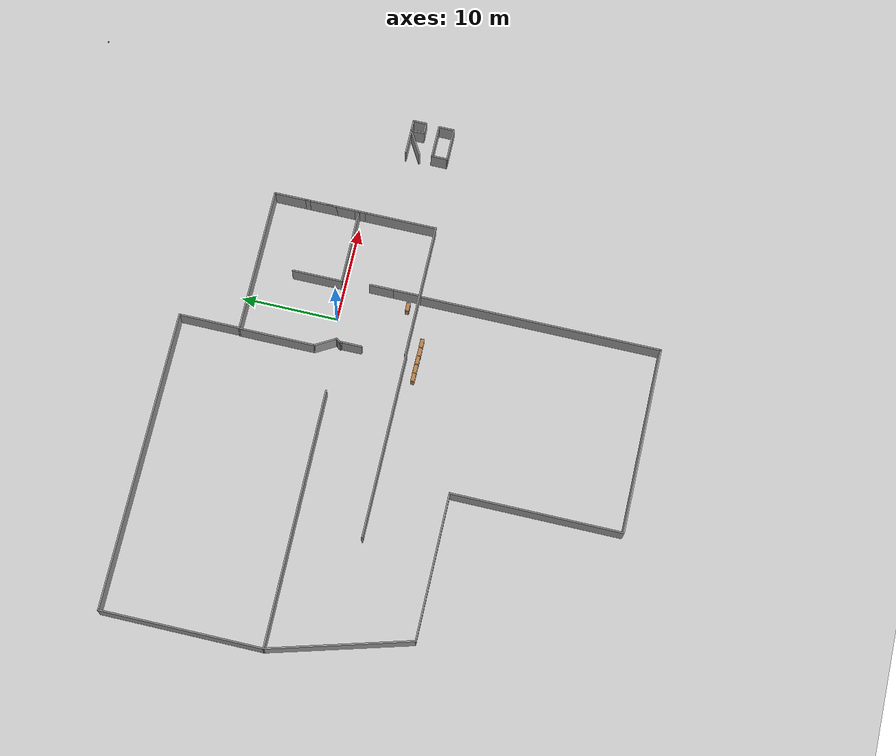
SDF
<sdf version="1.6">
 <world name="default">
  <light name="sun" type="directional">
   <pose>0 0 10 0 -0 0</pose>
   <diffuse>0.8 0.8 0.8 1</diffuse>
   <specular>0.1 0.1 0.1 1</specular>
   <attenuation>
    <range>1000</range>
    <constant>0.9</constant>
    <linear>0.01</linear>
    <quadratic>0.001</quadratic>
   </attenuation>
   <direction>-0.5 0.5 -1</direction>
  </light>
  <model name="ground_plane">
   <static>1</static>
   <link name="link">
    <collision name="collision">
     <geometry><plane><normal>0 0 1</normal><size>100 100</size></plane></geometry>
     <surface><friction><ode><mu>100</mu><mu2>50</mu2></ode></friction></surface>
    </collision>
    <visual name="visual">
     <cast_shadows>0</cast_shadows>
     <geometry><plane><normal>0 0 1</normal><size>100 100</size></plane></geometry>
     <material>
      <script><uri>file://media/materials/scripts/gazebo.material</uri><name>Gazebo/Grey</name></script>
     </material>
    </visual>
   </link>
  </model>
  <physics name="default_physics" default="0" type="ode">
   <max_step_size>0.01</max_step_size>
   <real_time_factor>1</real_time_factor>
   <real_time_update_rate>100</real_time_update_rate>
  </physics>
  <gravity>0 0 -9.8</gravity>
  <magnetic_field>6e-06 2.3e-05 -4.2e-05</magnetic_field>
  <atmosphere type="adiabatic"/>
  <scene><ambient>0.4 0.4 0.4 1</ambient><background>0.7 0.7 0.7 1</background><shadows>1</shadows></scene>
  <spherical_coordinates>
   <surface_model>EARTH_WGS84</surface_model>
   <latitude_deg>0</latitude_deg>
   <longitude_deg>0</longitude_deg>
   <elevation>0</elevation>
   <heading_deg>0</heading_deg>
  </spherical_coordinates>
  <model name="Untitled">
   <pose>-2.94 -2.075 0 0 -0 0</pose>
   <link name="Wall_0">
    <collision name="Wall_0_Collision">
     <geometry><box><size>2.5 0.15 2.5</size></box></geometry>
     <pose>0 0 1.25 0 -0 0</pose>
    </collision>
    <visual name="Wall_0_Visual">
     <pose>0 0 1.25 0 -0 0</pose>
     <geometry><box><size>2.5 0.15 2.5</size></box></geometry>
     <material>
      <script><uri>file://media/materials/scripts/gazebo.material</uri><name>Gazebo/Grey</name></script>
      <ambient>1 1 1 1</ambient>
     </material>
    </visual>
    <pose>0 0 0 0 0 -1.5708</pose>
   </link>
   <static>1</static>
  </model>
  <model name="Untitled_0">
   <pose>3.65018 0.74622 0 0 -0 0</pose>
   <link name="Wall_1">
    <collision name="Wall_1_Collision">
     <geometry><box><size>14 0.15 2.5</size></box></geometry>
     <pose>0 0 1.25 0 -0 0</pose>
    </collision>
    <visual name="Wall_1_Visual">
     <pose>0 0 1.25 0 -0 0</pose>
     <geometry><box><size>14 0.15 2.5</size></box></geometry>
     <material>
      <script><uri>file://media/materials/scripts/gazebo.material</uri><name>Gazebo/Grey</name></script>
      <ambient>1 1 1 1</ambient>
     </material>
    </visual>
    <pose>0.638726 -8.525 0 0 -0 0</pose>
   </link>
   <link name="Wall_10">
    <collision name="Wall_10_Collision">
     <geometry><box><size>0.75 0.15 2.5</size></box></geometry>
     <pose>0 0 1.25 0 -0 0</pose>
    </collision>
    <visual name="Wall_10_Visual">
     <pose>0 0 1.25 0 -0 0</pose>
     <geometry><box><size>0.75 0.15 2.5</size></box></geometry>
     <material>
      <script><uri>file://media/materials/scripts/gazebo.material</uri><name>Gazebo/Grey</name></script>
      <ambient>1 1 1 1</ambient>
     </material>
    </visual>
    <pose>-6.51128 -1.61997 0 0 0 -2.0944</pose>
   </link>
   <link name="Wall_12">
    <collision name="Wall_12_Collision">
     <geometry><box><size>2.75 0.15 2.5</size></box></geometry>
     <pose>0 0 1.25 0 -0 0</pose>
    </collision>
    <visual name="Wall_12_Visual">
     <pose>0 0 1.25 0 -0 0</pose>
     <geometry><box><size>2.75 0.15 2.5</size></box></geometry>
     <material>
      <script><uri>file://media/materials/scripts/gazebo.material</uri><name>Gazebo/Grey</name></script>
      <ambient>1 1 1 1</ambient>
     </material>
    </visual>
    <pose>0.042148 -7.03161 0 0 0 -1.5708</pose>
   </link>
   <link name="Wall_14">
    <collision name="Wall_14_Collision">
     <geometry><box><size>5.25 0.15 2.5</size></box></geometry>
     <pose>0 0 1.25 0 -0 0</pose>
    </collision>
    <visual name="Wall_14_Visual">
     <pose>0 0 1.25 0 -0 0</pose>
     <geometry><box><size>5.25 0.15 2.5</size></box></geometry>
     <material>
      <script><uri>file://media/materials/scripts/gazebo.material</uri><name>Gazebo/Grey</name></script>
      <ambient>1 1 1 1</ambient>
     </material>
    </visual>
    <pose>-0.251054 2.13149 0 0 0 -1.5708</pose>
   </link>
   <link name="Wall_15">
    <collision name="Wall_15_Collision">
     <geometry><box><size>7.75 0.15 2.5</size></box></geometry>
     <pose>0 0 1.25 0 -0 0</pose>
    </collision>
    <visual name="Wall_15_Visual">
     <pose>0 0 1.25 0 -0 0</pose>
     <geometry><box><size>7.75 0.15 2.5</size></box></geometry>
     <material>
      <script><uri>file://media/materials/scripts/gazebo.material</uri><name>Gazebo/Grey</name></script>
      <ambient>1 1 1 1</ambient>
     </material>
    </visual>
    <pose>3.54895 -0.418508 0 0 -0 0</pose>
   </link>
   <link name="Wall_19">
    <collision name="Wall_19_Collision">
     <geometry><box><size>2.5 0.15 2.5</size></box></geometry>
     <pose>0 0 1.25 0 -0 0</pose>
    </collision>
    <visual name="Wall_19_Visual">
     <pose>0 0 1.25 0 -0 0</pose>
     <geometry><box><size>2.5 0.15 2.5</size></box></geometry>
     <material>
      <script><uri>file://media/materials/scripts/gazebo.material</uri><name>Gazebo/Grey</name></script>
      <ambient>1 1 1 1</ambient>
     </material>
    </visual>
    <pose>0.042148 -4.55661 0 0 -0 1.5708</pose>
   </link>
   <link name="Wall_2">
    <collision name="Wall_2_Collision">
     <geometry><box><size>7.5 0.15 2.5</size></box></geometry>
     <pose>0 0 1.25 0 -0 0</pose>
    </collision>
    <visual name="Wall_2_Visual">
     <pose>0 0 1.25 0 -0 0</pose>
     <geometry><box><size>7.5 0.15 2.5</size></box></geometry>
     <material>
      <script><uri>file://media/materials/scripts/gazebo.material</uri><name>Gazebo/Grey</name></script>
      <ambient>1 1 1 1</ambient>
     </material>
    </visual>
    <pose>7.56373 -4.85 0 0 -0 1.5708</pose>
   </link>
   <link name="Wall_3">
    <collision name="Wall_3_Collision">
     <geometry><box><size>6 0.15 2.5</size></box></geometry>
     <pose>0 0 1.25 0 -0 0</pose>
    </collision>
    <visual name="Wall_3_Visual">
     <pose>0 0 1.25 0 -0 0</pose>
     <geometry><box><size>6 0.15 2.5</size></box></geometry>
     <material>
      <script><uri>file://media/materials/scripts/gazebo.material</uri><name>Gazebo/Grey</name></script>
      <ambient>1 1 1 1</ambient>
     </material>
    </visual>
    <pose>7.56373 1.75 0 0 -0 1.5708</pose>
   </link>
   <link name="Wall_4">
    <collision name="Wall_4_Collision">
     <geometry><box><size>4.75 0.15 2.5</size></box></geometry>
     <pose>0 0 1.25 0 -0 0</pose>
    </collision>
    <visual name="Wall_4_Visual">
     <pose>0 0 1.25 0 -0 0</pose>
     <geometry><box><size>4.75 0.15 2.5</size></box></geometry>
     <material>
      <script><uri>file://media/materials/scripts/gazebo.material</uri><name>Gazebo/Grey</name></script>
      <ambient>1 1 1 1</ambient>
     </material>
    </visual>
    <pose>7.56373 2.375 0 0 0 -1.5708</pose>
   </link>
   <link name="Wall_5">
    <collision name="Wall_5_Collision">
     <geometry><box><size>5.25 0.15 2.5</size></box></geometry>
     <pose>0 0 1.25 0 -0 0</pose>
    </collision>
    <visual name="Wall_5_Visual">
     <pose>0 0 1.25 0 -0 0</pose>
     <geometry><box><size>5.25 0.15 2.5</size></box></geometry>
     <material>
      <script><uri>file://media/materials/scripts/gazebo.material</uri><name>Gazebo/Grey</name></script>
      <ambient>1 1 1 1</ambient>
     </material>
    </visual>
    <pose>7.56373 2.625 0 0 -0 1.5708</pose>
   </link>
   <link name="Wall_6">
    <collision name="Wall_6_Collision">
     <geometry><box><size>3.5 0.15 2.5</size></box></geometry>
     <pose>0 0 1.25 0 -0 0</pose>
    </collision>
    <visual name="Wall_6_Visual">
     <pose>0 0 1.25 0 -0 0</pose>
     <geometry><box><size>3.5 0.15 2.5</size></box></geometry>
     <material>
      <script><uri>file://media/materials/scripts/gazebo.material</uri><name>Gazebo/Grey</name></script>
      <ambient>1 1 1 1</ambient>
     </material>
    </visual>
    <pose>7.56373 6.85 0 0 -0 1.5708</pose>
   </link>
   <link name="Wall_7">
    <collision name="Wall_7_Collision">
     <geometry><box><size>15.25 0.15 2.5</size></box></geometry>
     <pose>0 0 1.25 0 -0 0</pose>
    </collision>
    <visual name="Wall_7_Visual">
     <pose>0 0 1.25 0 -0 0</pose>
     <geometry><box><size>15.25 0.15 2.5</size></box></geometry>
     <material>
      <script><uri>file://media/materials/scripts/gazebo.material</uri><name>Gazebo/Grey</name></script>
      <ambient>1 1 1 1</ambient>
     </material>
    </visual>
    <pose>0.013725 8.525 0 0 -0 3.14159</pose>
   </link>
   <link name="Wall_8">
    <collision name="Wall_8_Collision">
     <geometry><box><size>8 0.15 2.5</size></box></geometry>
     <pose>0 0 1.25 0 -0 0</pose>
    </collision>
    <visual name="Wall_8_Visual">
     <pose>0 0 1.25 0 -0 0</pose>
     <geometry><box><size>8 0.15 2.5</size></box></geometry>
     <material>
      <script><uri>file://media/materials/scripts/gazebo.material</uri><name>Gazebo/Grey</name></script>
      <ambient>1 1 1 1</ambient>
     </material>
    </visual>
    <pose>-7.53627 4.6 0 0 0 -1.5708</pose>
   </link>
   <link name="Wall_9">
    <collision name="Wall_9_Collision">
     <geometry><box><size>2.5 0.15 2.5</size></box></geometry>
     <pose>0 0 1.25 0 -0 0</pose>
    </collision>
    <visual name="Wall_9_Visual">
     <pose>0 0 1.25 0 -0 0</pose>
     <geometry><box><size>2.5 0.15 2.5</size></box></geometry>
     <material>
      <script><uri>file://media/materials/scripts/gazebo.material</uri><name>Gazebo/Grey</name></script>
      <ambient>1 1 1 1</ambient>
     </material>
    </visual>
    <pose>-6.94878 -0.34258 0 0 0 -1.0472</pose>
   </link>
   <static>1</static>
  </model>
  <model name="Untitled_1">
   <pose>-15.6763 -8.6699 0 0 -0 0</pose>
   <link name="Wall_10">
    <collision name="Wall_10_Collision">
     <geometry><box><size>19.5 0.15 2.5</size></box></geometry>
     <pose>0 0 1.25 0 -0 0</pose>
    </collision>
    <visual name="Wall_10_Visual">
     <pose>0 0 1.25 0 -0 0</pose>
     <geometry><box><size>19.5 0.15 2.5</size></box></geometry>
     <material>
      <script><uri>file://media/materials/scripts/gazebo.material</uri><name>Gazebo/Grey</name></script>
      <ambient>1 1 1 1</ambient>
     </material>
    </visual>
    <pose>9.60067 -24.2128 0 0 -0 0</pose>
   </link>
   <link name="Wall_11">
    <collision name="Wall_11_Collision">
     <geometry><box><size>25 0.15 2.5</size></box></geometry>
     <pose>0 0 1.25 0 -0 0</pose>
    </collision>
    <visual name="Wall_11_Visual">
     <pose>0 0 1.25 0 -0 0</pose>
     <geometry><box><size>25 0.15 2.5</size></box></geometry>
     <material>
      <script><uri>file://media/materials/scripts/gazebo.material</uri><name>Gazebo/Grey</name></script>
      <ambient>1 1 1 1</ambient>
     </material>
    </visual>
    <pose>19.2757 -11.7878 0 0 -0 1.5708</pose>
   </link>
   <link name="Wall_13">
    <collision name="Wall_13_Collision">
     <geometry><box><size>16.6564 0.15 2.5</size></box></geometry>
     <pose>0 0 1.25 0 -0 0</pose>
    </collision>
    <visual name="Wall_13_Visual">
     <pose>0 0 1.25 0 -0 0</pose>
     <geometry><box><size>16.6564 0.15 2.5</size></box></geometry>
     <material>
      <script><uri>file://media/materials/scripts/gazebo.material</uri><name>Gazebo/Grey</name></script>
      <ambient>1 1 1 1</ambient>
     </material>
    </visual>
    <pose>-19.2579 15.9596 0 0 -0 1.5708</pose>
   </link>
   <link name="Wall_16">
    <collision name="Wall_16_Collision">
     <geometry><box><size>31.25 0.15 2.5</size></box></geometry>
     <pose>0 0 1.25 0 -0 0</pose>
    </collision>
    <visual name="Wall_16_Visual">
     <pose>0 0 1.25 0 -0 0</pose>
     <geometry><box><size>31.25 0.15 2.5</size></box></geometry>
     <material>
      <script><uri>file://media/materials/scripts/gazebo.material</uri><name>Gazebo/Grey</name></script>
      <ambient>1 1 1 1</ambient>
     </material>
    </visual>
    <pose>-3.70789 24.2128 0 0 -0 0</pose>
   </link>
   <link name="Wall_17">
    <collision name="Wall_17_Collision">
     <geometry><box><size>6.75 0.15 2.5</size></box></geometry>
     <pose>0 0 1.25 0 -0 0</pose>
    </collision>
    <visual name="Wall_17_Visual">
     <pose>0 0 1.25 0 -0 0</pose>
     <geometry><box><size>6.75 0.15 2.5</size></box></geometry>
     <material>
      <script><uri>file://media/materials/scripts/gazebo.material</uri><name>Gazebo/Grey</name></script>
      <ambient>1 1 1 1</ambient>
     </material>
    </visual>
    <pose>11.8421 20.9128 0 0 0 -1.5708</pose>
   </link>
   <link name="Wall_3">
    <collision name="Wall_3_Collision">
     <geometry><box><size>19.5 0.15 2.5</size></box></geometry>
     <pose>0 0 1.25 0 -0 0</pose>
    </collision>
    <visual name="Wall_3_Visual">
     <pose>0 0 1.25 0 -0 0</pose>
     <geometry><box><size>19.5 0.15 2.5</size></box></geometry>
     <material>
      <script><uri>file://media/materials/scripts/gazebo.material</uri><name>Gazebo/Grey</name></script>
      <ambient>1 1 1 1</ambient>
     </material>
    </visual>
    <pose>3.335 0.803938 0 0 -0 0</pose>
   </link>
   <link name="Wall_6">
    <collision name="Wall_6_Collision">
     <geometry><box><size>26.8214 0.15 2.5</size></box></geometry>
     <pose>0 0 1.25 0 -0 0</pose>
    </collision>
    <visual name="Wall_6_Visual">
     <pose>0 0 1.25 0 -0 0</pose>
     <geometry><box><size>26.8214 0.15 2.5</size></box></geometry>
     <material>
      <script><uri>file://media/materials/scripts/gazebo.material</uri><name>Gazebo/Grey</name></script>
      <ambient>1 1 1 1</ambient>
     </material>
    </visual>
    <pose>-5.92229 7.70568 0 0 0 -3.13463</pose>
   </link>
   <link name="Wall_7">
    <collision name="Wall_7_Collision">
     <geometry><box><size>14.9501 0.15 2.5</size></box></geometry>
     <pose>0 0 1.25 0 -0 0</pose>
    </collision>
    <visual name="Wall_7_Visual">
     <pose>0 0 1.25 0 -0 0</pose>
     <geometry><box><size>14.9501 0.15 2.5</size></box></geometry>
     <material>
      <script><uri>file://media/materials/scripts/gazebo.material</uri><name>Gazebo/Grey</name></script>
      <ambient>1 1 1 1</ambient>
     </material>
    </visual>
    <pose>-17.2161 0.500001 0 0 0 -1.29126</pose>
   </link>
   <link name="Wall_8">
    <collision name="Wall_8_Collision">
     <geometry><box><size>15.25 0.15 2.5</size></box></geometry>
     <pose>0 0 1.25 0 -0 0</pose>
    </collision>
    <visual name="Wall_8_Visual">
     <pose>0 0 1.25 0 -0 0</pose>
     <geometry><box><size>15.25 0.15 2.5</size></box></geometry>
     <material>
      <script><uri>file://media/materials/scripts/gazebo.material</uri><name>Gazebo/Grey</name></script>
      <ambient>1 1 1 1</ambient>
     </material>
    </visual>
    <pose>-7.62433 -6.6128 0 0 -0 0</pose>
   </link>
   <link name="Wall_9">
    <collision name="Wall_9_Collision">
     <geometry><box><size>17.75 0.15 2.5</size></box></geometry>
     <pose>0 0 1.25 0 -0 0</pose>
    </collision>
    <visual name="Wall_9_Visual">
     <pose>0 0 1.25 0 -0 0</pose>
     <geometry><box><size>17.75 0.15 2.5</size></box></geometry>
     <material>
      <script><uri>file://media/materials/scripts/gazebo.material</uri><name>Gazebo/Grey</name></script>
      <ambient>1 1 1 1</ambient>
     </material>
    </visual>
    <pose>-0.074333 -15.4128 0 0 0 -1.5708</pose>
   </link>
   <static>1</static>
  </model>
  <model name="bookshelf_0">
   <static>1</static>
   <link name="link">
    <inertial><mass>1</mass></inertial>
    <collision name="back">
     <pose>0 0.005 0.6 0 -0 0</pose>
     <geometry><box><size>0.9 0.01 1.2</size></box></geometry>
    </collision>
    <visual name="visual1">
     <pose>0 0.005 0.6 0 -0 0</pose>
     <geometry><box><size>0.9 0.01 1.2</size></box></geometry>
     <material>
      <script><uri>file://media/materials/scripts/gazebo.material</uri><name>Gazebo/Wood</name></script>
     </material>
    </visual>
    <collision name="left_side">
     <pose>0.45 -0.195 0.6 0 -0 0</pose>
     <geometry><box><size>0.02 0.4 1.2</size></box></geometry>
    </collision>
    <visual name="visual2">
     <pose>0.45 -0.195 0.6 0 -0 0</pose>
     <geometry><box><size>0.02 0.4 1.2</size></box></geometry>
     <material>
      <script><uri>file://media/materials/scripts/gazebo.material</uri><name>Gazebo/Wood</name></script>
     </material>
    </visual>
    <collision name="right_side">
     <pose>-0.45 -0.195 0.6 0 -0 0</pose>
     <geometry><box><size>0.02 0.4 1.2</size></box></geometry>
    </collision>
    <visual name="visual3">
     <pose>-0.45 -0.195 0.6 0 -0 0</pose>
     <geometry><box><size>0.02 0.4 1.2</size></box></geometry>
     <material>
      <script><uri>file://media/materials/scripts/gazebo.material</uri><name>Gazebo/Wood</name></script>
     </material>
    </visual>
    <collision name="bottom">
     <pose>0 -0.195 0.03 0 -0 0</pose>
     <geometry><box><size>0.88 0.4 0.06</size></box></geometry>
    </collision>
    <visual name="visual4">
     <pose>0 -0.195 0.03 0 -0 0</pose>
     <geometry><box><size>0.88 0.4 0.06</size></box></geometry>
     <material>
      <script><uri>file://media/materials/scripts/gazebo.material</uri><name>Gazebo/Wood</name></script>
     </material>
    </visual>
    <collision name="top">
     <pose>0 -0.195 1.19 0 -0 0</pose>
     <geometry><box><size>0.88 0.4 0.02</size></box></geometry>
    </collision>
    <visual name="visual5">
     <pose>0 -0.195 1.19 0 -0 0</pose>
     <geometry><box><size>0.88 0.4 0.02</size></box></geometry>
     <material>
      <script><uri>file://media/materials/scripts/gazebo.material</uri><name>Gazebo/Wood</name></script>
     </material>
    </visual>
    <collision name="low_shelf">
     <pose>0 -0.195 0.43 0 -0 0</pose>
     <geometry><box><size>0.88 0.4 0.02</size></box></geometry>
    </collision>
    <visual name="visual6">
     <pose>0 -0.195 0.43 0 -0 0</pose>
     <geometry><box><size>0.88 0.4 0.02</size></box></geometry>
     <material>
      <script><uri>file://media/materials/scripts/gazebo.material</uri><name>Gazebo/Wood</name></script>
     </material>
    </visual>
    <collision name="high_shelf">
     <pose>0 -0.195 0.8 0 -0 0</pose>
     <geometry><box><size>0.88 0.4 0.02</size></box></geometry>
    </collision>
    <visual name="visual7">
     <pose>0 -0.195 0.8 0 -0 0</pose>
     <geometry><box><size>0.88 0.4 0.02</size></box></geometry>
     <material>
      <script><uri>file://media/materials/scripts/gazebo.material</uri><name>Gazebo/Wood</name></script>
     </material>
    </visual>
   </link>
   <pose>2.67803 -7.01622 0 0 0 -3.12211</pose>
  </model>
  <model name="bookshelf_4">
   <static>1</static>
   <link name="link">
    <inertial><mass>1</mass></inertial>
    <collision name="back">
     <pose>0 0.005 0.6 0 -0 0</pose>
     <geometry><box><size>0.9 0.01 1.2</size></box></geometry>
    </collision>
    <visual name="visual1">
     <pose>0 0.005 0.6 0 -0 0</pose>
     <geometry><box><size>0.9 0.01 1.2</size></box></geometry>
     <material>
      <script><uri>file://media/materials/scripts/gazebo.material</uri><name>Gazebo/Wood</name></script>
     </material>
    </visual>
    <collision name="left_side">
     <pose>0.45 -0.195 0.6 0 -0 0</pose>
     <geometry><box><size>0.02 0.4 1.2</size></box></geometry>
    </collision>
    <visual name="visual2">
     <pose>0.45 -0.195 0.6 0 -0 0</pose>
     <geometry><box><size>0.02 0.4 1.2</size></box></geometry>
     <material>
      <script><uri>file://media/materials/scripts/gazebo.material</uri><name>Gazebo/Wood</name></script>
     </material>
    </visual>
    <collision name="right_side">
     <pose>-0.45 -0.195 0.6 0 -0 0</pose>
     <geometry><box><size>0.02 0.4 1.2</size></box></geometry>
    </collision>
    <visual name="visual3">
     <pose>-0.45 -0.195 0.6 0 -0 0</pose>
     <geometry><box><size>0.02 0.4 1.2</size></box></geometry>
     <material>
      <script><uri>file://media/materials/scripts/gazebo.material</uri><name>Gazebo/Wood</name></script>
     </material>
    </visual>
    <collision name="bottom">
     <pose>0 -0.195 0.03 0 -0 0</pose>
     <geometry><box><size>0.88 0.4 0.06</size></box></geometry>
    </collision>
    <visual name="visual4">
     <pose>0 -0.195 0.03 0 -0 0</pose>
     <geometry><box><size>0.88 0.4 0.06</size></box></geometry>
     <material>
      <script><uri>file://media/materials/scripts/gazebo.material</uri><name>Gazebo/Wood</name></script>
     </material>
    </visual>
    <collision name="top">
     <pose>0 -0.195 1.19 0 -0 0</pose>
     <geometry><box><size>0.88 0.4 0.02</size></box></geometry>
    </collision>
    <visual name="visual5">
     <pose>0 -0.195 1.19 0 -0 0</pose>
     <geometry><box><size>0.88 0.4 0.02</size></box></geometry>
     <material>
      <script><uri>file://media/materials/scripts/gazebo.material</uri><name>Gazebo/Wood</name></script>
     </material>
    </visual>
    <collision name="low_shelf">
     <pose>0 -0.195 0.43 0 -0 0</pose>
     <geometry><box><size>0.88 0.4 0.02</size></box></geometry>
    </collision>
    <visual name="visual6">
     <pose>0 -0.195 0.43 0 -0 0</pose>
     <geometry><box><size>0.88 0.4 0.02</size></box></geometry>
     <material>
      <script><uri>file://media/materials/scripts/gazebo.material</uri><name>Gazebo/Wood</name></script>
     </material>
    </visual>
    <collision name="high_shelf">
     <pose>0 -0.195 0.8 0 -0 0</pose>
     <geometry><box><size>0.88 0.4 0.02</size></box></geometry>
    </collision>
    <visual name="visual7">
     <pose>0 -0.195 0.8 0 -0 0</pose>
     <geometry><box><size>0.88 0.4 0.02</size></box></geometry>
     <material>
      <script><uri>file://media/materials/scripts/gazebo.material</uri><name>Gazebo/Wood</name></script>
     </material>
    </visual>
   </link>
   <pose>-0.811858 -8.87002 0 0 -0 0</pose>
  </model>
  <model name="bookshelf_5">
   <static>1</static>
   <link name="link">
    <inertial><mass>1</mass></inertial>
    <collision name="back">
     <pose>0 0.005 0.6 0 -0 0</pose>
     <geometry><box><size>0.9 0.01 1.2</size></box></geometry>
    </collision>
    <visual name="visual1">
     <pose>0 0.005 0.6 0 -0 0</pose>
     <geometry><box><size>0.9 0.01 1.2</size></box></geometry>
     <material>
      <script><uri>file://media/materials/scripts/gazebo.material</uri><name>Gazebo/Wood</name></script>
     </material>
    </visual>
    <collision name="left_side">
     <pose>0.45 -0.195 0.6 0 -0 0</pose>
     <geometry><box><size>0.02 0.4 1.2</size></box></geometry>
    </collision>
    <visual name="visual2">
     <pose>0.45 -0.195 0.6 0 -0 0</pose>
     <geometry><box><size>0.02 0.4 1.2</size></box></geometry>
     <material>
      <script><uri>file://media/materials/scripts/gazebo.material</uri><name>Gazebo/Wood</name></script>
     </material>
    </visual>
    <collision name="right_side">
     <pose>-0.45 -0.195 0.6 0 -0 0</pose>
     <geometry><box><size>0.02 0.4 1.2</size></box></geometry>
    </collision>
    <visual name="visual3">
     <pose>-0.45 -0.195 0.6 0 -0 0</pose>
     <geometry><box><size>0.02 0.4 1.2</size></box></geometry>
     <material>
      <script><uri>file://media/materials/scripts/gazebo.material</uri><name>Gazebo/Wood</name></script>
     </material>
    </visual>
    <collision name="bottom">
     <pose>0 -0.195 0.03 0 -0 0</pose>
     <geometry><box><size>0.88 0.4 0.06</size></box></geometry>
    </collision>
    <visual name="visual4">
     <pose>0 -0.195 0.03 0 -0 0</pose>
     <geometry><box><size>0.88 0.4 0.06</size></box></geometry>
     <material>
      <script><uri>file://media/materials/scripts/gazebo.material</uri><name>Gazebo/Wood</name></script>
     </material>
    </visual>
    <collision name="top">
     <pose>0 -0.195 1.19 0 -0 0</pose>
     <geometry><box><size>0.88 0.4 0.02</size></box></geometry>
    </collision>
    <visual name="visual5">
     <pose>0 -0.195 1.19 0 -0 0</pose>
     <geometry><box><size>0.88 0.4 0.02</size></box></geometry>
     <material>
      <script><uri>file://media/materials/scripts/gazebo.material</uri><name>Gazebo/Wood</name></script>
     </material>
    </visual>
    <collision name="low_shelf">
     <pose>0 -0.195 0.43 0 -0 0</pose>
     <geometry><box><size>0.88 0.4 0.02</size></box></geometry>
    </collision>
    <visual name="visual6">
     <pose>0 -0.195 0.43 0 -0 0</pose>
     <geometry><box><size>0.88 0.4 0.02</size></box></geometry>
     <material>
      <script><uri>file://media/materials/scripts/gazebo.material</uri><name>Gazebo/Wood</name></script>
     </material>
    </visual>
    <collision name="high_shelf">
     <pose>0 -0.195 0.8 0 -0 0</pose>
     <geometry><box><size>0.88 0.4 0.02</size></box></geometry>
    </collision>
    <visual name="visual7">
     <pose>0 -0.195 0.8 0 -0 0</pose>
     <geometry><box><size>0.88 0.4 0.02</size></box></geometry>
     <material>
      <script><uri>file://media/materials/scripts/gazebo.material</uri><name>Gazebo/Wood</name></script>
     </material>
    </visual>
   </link>
   <pose>-1.74667 -8.881 0 0 -0 0</pose>
  </model>
  <model name="bookshelf_6">
   <static>1</static>
   <link name="link">
    <inertial><mass>1</mass></inertial>
    <collision name="back">
     <pose>0 0.005 0.6 0 -0 0</pose>
     <geometry><box><size>0.9 0.01 1.2</size></box></geometry>
    </collision>
    <visual name="visual1">
     <pose>0 0.005 0.6 0 -0 0</pose>
     <geometry><box><size>0.9 0.01 1.2</size></box></geometry>
     <material>
      <script><uri>file://media/materials/scripts/gazebo.material</uri><name>Gazebo/Wood</name></script>
     </material>
    </visual>
    <collision name="left_side">
     <pose>0.45 -0.195 0.6 0 -0 0</pose>
     <geometry><box><size>0.02 0.4 1.2</size></box></geometry>
    </collision>
    <visual name="visual2">
     <pose>0.45 -0.195 0.6 0 -0 0</pose>
     <geometry><box><size>0.02 0.4 1.2</size></box></geometry>
     <material>
      <script><uri>file://media/materials/scripts/gazebo.material</uri><name>Gazebo/Wood</name></script>
     </material>
    </visual>
    <collision name="right_side">
     <pose>-0.45 -0.195 0.6 0 -0 0</pose>
     <geometry><box><size>0.02 0.4 1.2</size></box></geometry>
    </collision>
    <visual name="visual3">
     <pose>-0.45 -0.195 0.6 0 -0 0</pose>
     <geometry><box><size>0.02 0.4 1.2</size></box></geometry>
     <material>
      <script><uri>file://media/materials/scripts/gazebo.material</uri><name>Gazebo/Wood</name></script>
     </material>
    </visual>
    <collision name="bottom">
     <pose>0 -0.195 0.03 0 -0 0</pose>
     <geometry><box><size>0.88 0.4 0.06</size></box></geometry>
    </collision>
    <visual name="visual4">
     <pose>0 -0.195 0.03 0 -0 0</pose>
     <geometry><box><size>0.88 0.4 0.06</size></box></geometry>
     <material>
      <script><uri>file://media/materials/scripts/gazebo.material</uri><name>Gazebo/Wood</name></script>
     </material>
    </visual>
    <collision name="top">
     <pose>0 -0.195 1.19 0 -0 0</pose>
     <geometry><box><size>0.88 0.4 0.02</size></box></geometry>
    </collision>
    <visual name="visual5">
     <pose>0 -0.195 1.19 0 -0 0</pose>
     <geometry><box><size>0.88 0.4 0.02</size></box></geometry>
     <material>
      <script><uri>file://media/materials/scripts/gazebo.material</uri><name>Gazebo/Wood</name></script>
     </material>
    </visual>
    <collision name="low_shelf">
     <pose>0 -0.195 0.43 0 -0 0</pose>
     <geometry><box><size>0.88 0.4 0.02</size></box></geometry>
    </collision>
    <visual name="visual6">
     <pose>0 -0.195 0.43 0 -0 0</pose>
     <geometry><box><size>0.88 0.4 0.02</size></box></geometry>
     <material>
      <script><uri>file://media/materials/scripts/gazebo.material</uri><name>Gazebo/Wood</name></script>
     </material>
    </visual>
    <collision name="high_shelf">
     <pose>0 -0.195 0.8 0 -0 0</pose>
     <geometry><box><size>0.88 0.4 0.02</size></box></geometry>
    </collision>
    <visual name="visual7">
     <pose>0 -0.195 0.8 0 -0 0</pose>
     <geometry><box><size>0.88 0.4 0.02</size></box></geometry>
     <material>
      <script><uri>file://media/materials/scripts/gazebo.material</uri><name>Gazebo/Wood</name></script>
     </material>
    </visual>
   </link>
   <pose>-2.65554 -8.8585 0 0 -0 0</pose>
  </model>
  <model name="bookshelf_7">
   <static>1</static>
   <link name="link">
    <inertial><mass>1</mass></inertial>
    <collision name="back">
     <pose>0 0.005 0.6 0 -0 0</pose>
     <geometry><box><size>0.9 0.01 1.2</size></box></geometry>
    </collision>
    <visual name="visual1">
     <pose>0 0.005 0.6 0 -0 0</pose>
     <geometry><box><size>0.9 0.01 1.2</size></box></geometry>
     <material>
      <script><uri>file://media/materials/scripts/gazebo.material</uri><name>Gazebo/Wood</name></script>
     </material>
    </visual>
    <collision name="left_side">
     <pose>0.45 -0.195 0.6 0 -0 0</pose>
     <geometry><box><size>0.02 0.4 1.2</size></box></geometry>
    </collision>
    <visual name="visual2">
     <pose>0.45 -0.195 0.6 0 -0 0</pose>
     <geometry><box><size>0.02 0.4 1.2</size></box></geometry>
     <material>
      <script><uri>file://media/materials/scripts/gazebo.material</uri><name>Gazebo/Wood</name></script>
     </material>
    </visual>
    <collision name="right_side">
     <pose>-0.45 -0.195 0.6 0 -0 0</pose>
     <geometry><box><size>0.02 0.4 1.2</size></box></geometry>
    </collision>
    <visual name="visual3">
     <pose>-0.45 -0.195 0.6 0 -0 0</pose>
     <geometry><box><size>0.02 0.4 1.2</size></box></geometry>
     <material>
      <script><uri>file://media/materials/scripts/gazebo.material</uri><name>Gazebo/Wood</name></script>
     </material>
    </visual>
    <collision name="bottom">
     <pose>0 -0.195 0.03 0 -0 0</pose>
     <geometry><box><size>0.88 0.4 0.06</size></box></geometry>
    </collision>
    <visual name="visual4">
     <pose>0 -0.195 0.03 0 -0 0</pose>
     <geometry><box><size>0.88 0.4 0.06</size></box></geometry>
     <material>
      <script><uri>file://media/materials/scripts/gazebo.material</uri><name>Gazebo/Wood</name></script>
     </material>
    </visual>
    <collision name="top">
     <pose>0 -0.195 1.19 0 -0 0</pose>
     <geometry><box><size>0.88 0.4 0.02</size></box></geometry>
    </collision>
    <visual name="visual5">
     <pose>0 -0.195 1.19 0 -0 0</pose>
     <geometry><box><size>0.88 0.4 0.02</size></box></geometry>
     <material>
      <script><uri>file://media/materials/scripts/gazebo.material</uri><name>Gazebo/Wood</name></script>
     </material>
    </visual>
    <collision name="low_shelf">
     <pose>0 -0.195 0.43 0 -0 0</pose>
     <geometry><box><size>0.88 0.4 0.02</size></box></geometry>
    </collision>
    <visual name="visual6">
     <pose>0 -0.195 0.43 0 -0 0</pose>
     <geometry><box><size>0.88 0.4 0.02</size></box></geometry>
     <material>
      <script><uri>file://media/materials/scripts/gazebo.material</uri><name>Gazebo/Wood</name></script>
     </material>
    </visual>
    <collision name="high_shelf">
     <pose>0 -0.195 0.8 0 -0 0</pose>
     <geometry><box><size>0.88 0.4 0.02</size></box></geometry>
    </collision>
    <visual name="visual7">
     <pose>0 -0.195 0.8 0 -0 0</pose>
     <geometry><box><size>0.88 0.4 0.02</size></box></geometry>
     <material>
      <script><uri>file://media/materials/scripts/gazebo.material</uri><name>Gazebo/Wood</name></script>
     </material>
    </visual>
   </link>
   <pose>-3.5984 -8.84593 0 0 -0 0</pose>
  </model>
  <model name="bookshelf_8">
   <static>1</static>
   <link name="link">
    <inertial><mass>1</mass></inertial>
    <collision name="back">
     <pose>0 0.005 0.6 0 -0 0</pose>
     <geometry><box><size>0.9 0.01 1.2</size></box></geometry>
    </collision>
    <visual name="visual1">
     <pose>0 0.005 0.6 0 -0 0</pose>
     <geometry><box><size>0.9 0.01 1.2</size></box></geometry>
     <material>
      <script><uri>file://media/materials/scripts/gazebo.material</uri><name>Gazebo/Wood</name></script>
     </material>
    </visual>
    <collision name="left_side">
     <pose>0.45 -0.195 0.6 0 -0 0</pose>
     <geometry><box><size>0.02 0.4 1.2</size></box></geometry>
    </collision>
    <visual name="visual2">
     <pose>0.45 -0.195 0.6 0 -0 0</pose>
     <geometry><box><size>0.02 0.4 1.2</size></box></geometry>
     <material>
      <script><uri>file://media/materials/scripts/gazebo.material</uri><name>Gazebo/Wood</name></script>
     </material>
    </visual>
    <collision name="right_side">
     <pose>-0.45 -0.195 0.6 0 -0 0</pose>
     <geometry><box><size>0.02 0.4 1.2</size></box></geometry>
    </collision>
    <visual name="visual3">
     <pose>-0.45 -0.195 0.6 0 -0 0</pose>
     <geometry><box><size>0.02 0.4 1.2</size></box></geometry>
     <material>
      <script><uri>file://media/materials/scripts/gazebo.material</uri><name>Gazebo/Wood</name></script>
     </material>
    </visual>
    <collision name="bottom">
     <pose>0 -0.195 0.03 0 -0 0</pose>
     <geometry><box><size>0.88 0.4 0.06</size></box></geometry>
    </collision>
    <visual name="visual4">
     <pose>0 -0.195 0.03 0 -0 0</pose>
     <geometry><box><size>0.88 0.4 0.06</size></box></geometry>
     <material>
      <script><uri>file://media/materials/scripts/gazebo.material</uri><name>Gazebo/Wood</name></script>
     </material>
    </visual>
    <collision name="top">
     <pose>0 -0.195 1.19 0 -0 0</pose>
     <geometry><box><size>0.88 0.4 0.02</size></box></geometry>
    </collision>
    <visual name="visual5">
     <pose>0 -0.195 1.19 0 -0 0</pose>
     <geometry><box><size>0.88 0.4 0.02</size></box></geometry>
     <material>
      <script><uri>file://media/materials/scripts/gazebo.material</uri><name>Gazebo/Wood</name></script>
     </material>
    </visual>
    <collision name="low_shelf">
     <pose>0 -0.195 0.43 0 -0 0</pose>
     <geometry><box><size>0.88 0.4 0.02</size></box></geometry>
    </collision>
    <visual name="visual6">
     <pose>0 -0.195 0.43 0 -0 0</pose>
     <geometry><box><size>0.88 0.4 0.02</size></box></geometry>
     <material>
      <script><uri>file://media/materials/scripts/gazebo.material</uri><name>Gazebo/Wood</name></script>
     </material>
    </visual>
    <collision name="high_shelf">
     <pose>0 -0.195 0.8 0 -0 0</pose>
     <geometry><box><size>0.88 0.4 0.02</size></box></geometry>
    </collision>
    <visual name="visual7">
     <pose>0 -0.195 0.8 0 -0 0</pose>
     <geometry><box><size>0.88 0.4 0.02</size></box></geometry>
     <material>
      <script><uri>file://media/materials/scripts/gazebo.material</uri><name>Gazebo/Wood</name></script>
     </material>
    </visual>
   </link>
   <pose>-4.51725 -8.8489 0 0 -0 0</pose>
  </model>
  <model name="Untitled_2">
   <pose>20.572 -5.0615 0 0 -0 0</pose>
   <link name="Wall_52">
    <collision name="Wall_52_Collision">
     <geometry><box><size>3.75 0.15 2.5</size></box></geometry>
     <pose>0 0 1.25 0 -0 0</pose>
    </collision>
    <visual name="Wall_52_Visual">
     <pose>0 0 1.25 0 -0 0</pose>
     <geometry><box><size>3.75 0.15 2.5</size></box></geometry>
     <material>
      <script><uri>file://media/materials/scripts/gazebo.material</uri><name>Gazebo/Grey</name></script>
      <ambient>1 1 1 1</ambient>
     </material>
    </visual>
    <pose>-1e-06 2.15433 0 0 -0 3.14159</pose>
   </link>
   <link name="Wall_59">
    <collision name="Wall_59_Collision">
     <geometry><box><size>1.5 0.15 2.5</size></box></geometry>
     <pose>0 0 1.25 0 -0 0</pose>
    </collision>
    <visual name="Wall_59_Visual">
     <pose>0 0 1.25 0 -0 0</pose>
     <geometry><box><size>1.5 0.15 2.5</size></box></geometry>
     <material>
      <script><uri>file://media/materials/scripts/gazebo.material</uri><name>Gazebo/Grey</name></script>
      <ambient>1 1 1 1</ambient>
     </material>
    </visual>
    <pose>1.8 1.47933 0 0 0 -1.5708</pose>
   </link>
   <link name="Wall_60">
    <collision name="Wall_60_Collision">
     <geometry><box><size>1.25 0.15 2.5</size></box></geometry>
     <pose>0 0 1.25 0 -0 0</pose>
    </collision>
    <visual name="Wall_60_Visual">
     <pose>0 0 1.25 0 -0 0</pose>
     <geometry><box><size>1.25 0.15 2.5</size></box></geometry>
     <material>
      <script><uri>file://media/materials/scripts/gazebo.material</uri><name>Gazebo/Grey</name></script>
      <ambient>1 1 1 1</ambient>
     </material>
    </visual>
    <pose>1.25 0.804329 0 0 -0 3.14159</pose>
   </link>
   <link name="Wall_61">
    <collision name="Wall_61_Collision">
     <geometry><box><size>1.5 0.15 2.5</size></box></geometry>
     <pose>0 0 1.25 0 -0 0</pose>
    </collision>
    <visual name="Wall_61_Visual">
     <pose>0 0 1.25 0 -0 0</pose>
     <geometry><box><size>1.5 0.15 2.5</size></box></geometry>
     <material>
      <script><uri>file://media/materials/scripts/gazebo.material</uri><name>Gazebo/Grey</name></script>
      <ambient>1 1 1 1</ambient>
     </material>
    </visual>
    <pose>0.7 1.47933 0 0 -0 1.5708</pose>
   </link>
   <link name="Wall_62">
    <collision name="Wall_62_Collision">
     <geometry><box><size>3 0.15 2.5</size></box></geometry>
     <pose>0 0 1.25 0 -0 0</pose>
    </collision>
    <visual name="Wall_62_Visual">
     <pose>0 0 1.25 0 -0 0</pose>
     <geometry><box><size>3 0.15 2.5</size></box></geometry>
     <material>
      <script><uri>file://media/materials/scripts/gazebo.material</uri><name>Gazebo/Grey</name></script>
      <ambient>1 1 1 1</ambient>
     </material>
    </visual>
    <pose>-0.534087 1.44183 0 0 0 -2.61799</pose>
   </link>
   <link name="Wall_64">
    <collision name="Wall_64_Collision">
     <geometry><box><size>3.5 0.15 2.5</size></box></geometry>
     <pose>0 0 1.25 0 -0 0</pose>
    </collision>
    <visual name="Wall_64_Visual">
     <pose>0 0 1.25 0 -0 0</pose>
     <geometry><box><size>3.5 0.15 2.5</size></box></geometry>
     <material>
      <script><uri>file://media/materials/scripts/gazebo.material</uri><name>Gazebo/Grey</name></script>
      <ambient>1 1 1 1</ambient>
     </material>
    </visual>
    <pose>0.052424 -0.581782 0 0 -0 0</pose>
   </link>
   <link name="Wall_65">
    <collision name="Wall_65_Collision">
     <geometry><box><size>1.75 0.15 2.5</size></box></geometry>
     <pose>0 0 1.25 0 -0 0</pose>
    </collision>
    <visual name="Wall_65_Visual">
     <pose>0 0 1.25 0 -0 0</pose>
     <geometry><box><size>1.75 0.15 2.5</size></box></geometry>
     <material>
      <script><uri>file://media/materials/scripts/gazebo.material</uri><name>Gazebo/Grey</name></script>
      <ambient>1 1 1 1</ambient>
     </material>
    </visual>
    <pose>1.72743 -1.38178 0 0 0 -1.5708</pose>
   </link>
   <link name="Wall_66">
    <collision name="Wall_66_Collision">
     <geometry><box><size>3.5 0.15 2.5</size></box></geometry>
     <pose>0 0 1.25 0 -0 0</pose>
    </collision>
    <visual name="Wall_66_Visual">
     <pose>0 0 1.25 0 -0 0</pose>
     <geometry><box><size>3.5 0.15 2.5</size></box></geometry>
     <material>
      <script><uri>file://media/materials/scripts/gazebo.material</uri><name>Gazebo/Grey</name></script>
      <ambient>1 1 1 1</ambient>
     </material>
    </visual>
    <pose>0.052424 -2.18178 0 0 -0 3.14159</pose>
   </link>
   <link name="Wall_67">
    <collision name="Wall_67_Collision">
     <geometry><box><size>1.75 0.15 2.5</size></box></geometry>
     <pose>0 0 1.25 0 -0 0</pose>
    </collision>
    <visual name="Wall_67_Visual">
     <pose>0 0 1.25 0 -0 0</pose>
     <geometry><box><size>1.75 0.15 2.5</size></box></geometry>
     <material>
      <script><uri>file://media/materials/scripts/gazebo.material</uri><name>Gazebo/Grey</name></script>
      <ambient>1 1 1 1</ambient>
     </material>
    </visual>
    <pose>-1.62258 -1.38178 0 0 -0 1.5708</pose>
   </link>
   <static>1</static>
  </model>
  <model name="wood_cube_10cm">
   <link name="link">
    <pose>0 0 0.05 0 -0 0</pose>
    <inertial>
     <mass>0.5167</mass>
     <inertia>
      <ixx>0.000861167</ixx>
      <ixy>0</ixy>
      <ixz>0</ixz>
      <iyy>0.000861167</iyy>
      <iyz>0</iyz>
      <izz>0.000861167</izz>
     </inertia>
    </inertial>
    <collision name="collision">
     <geometry><box><size>0.1 0.1 0.1</size></box></geometry>
     <surface>
      <contact>
       <poissons_ratio>0.347</poissons_ratio>
       <elastic_modulus>8.8e+09</elastic_modulus>
       <ode><kp>100000</kp><kd>100</kd><max_vel>100</max_vel><min_depth>0.001</min_depth></ode>
      </contact>
      <friction>
       <torsional>
        <coefficient>1</coefficient>
        <use_patch_radius>0</use_patch_radius>
        <surface_radius>0.01</surface_radius>
       </torsional>
      </friction>
     </surface>
    </collision>
    <visual name="visual">
     <geometry><box><size>0.1 0.1 0.1</size></box></geometry>
     <material>
      <script><uri>file://media/materials/scripts/gazebo.material</uri><name>Gazebo/Wood</name></script>
     </material>
    </visual>
   </link>
   <pose>24.8531 31.1984 -0.001013 0 -0 0</pose>
  </model>
 </world>
</sdf>
